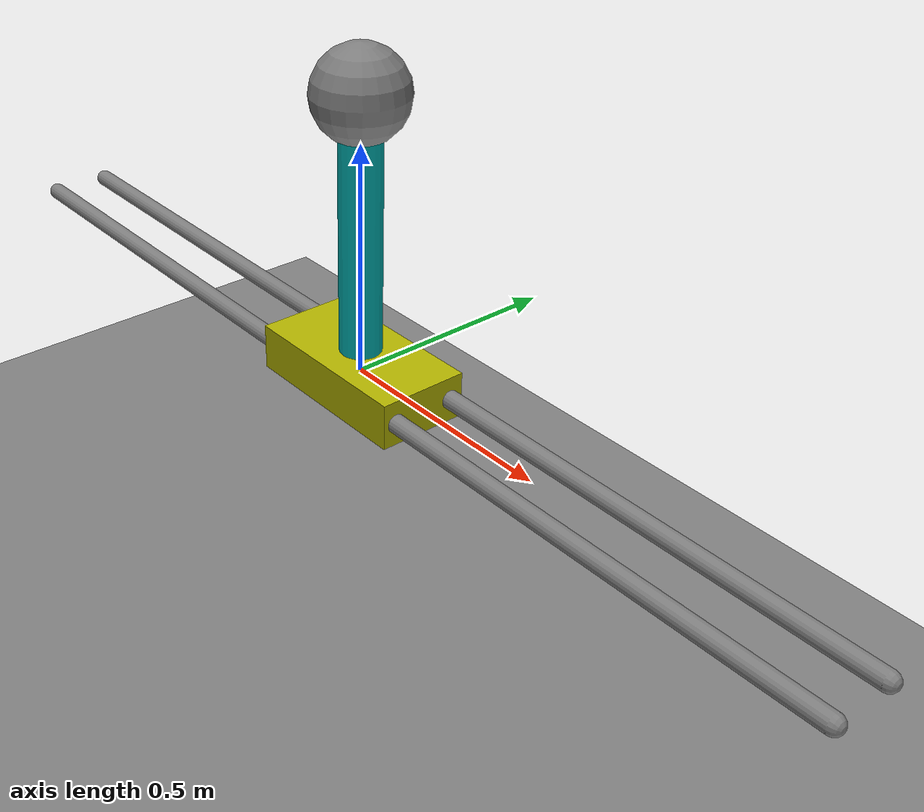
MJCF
<mujoco model='test_cartpole'>
  <compiler inertiafromgeom='true' coordinate='local'/>

  <option timestep='0.01' wind="0.0 0 0.0" density="1.2"/>

  <default>
    <joint damping='0.05' solreflimit='.08 1'/>
    <geom contype='0' friction='1 0.1 0.1'/>
  </default>

  <worldbody>
    <camera name='fixed' pos='0 -2.5 0' quat='0.707 0.707 0 0'/>
    <geom name='floor' pos='0 0 -1' size='4 4 4' type='plane' />
    <geom name='rail1' type='capsule' pos='0 .07 0' quat='0.707 0 0.707 0'
          size='0.02 1.2' />
    <geom name='rail2' type='capsule' pos='0 -.07 0' quat='0.707 0 0.707 0'
          size='0.02 1.2' />
    <body name='cart' pos='0 0 0'>
      <camera pos='0 -2.5 0' quat='0.707 0.707 0 0' />
      <joint name='slider' type='slide' limited='true' pos='0 0 0'
               axis='1 0 0' range='-1 1' />
      <geom name='cart' type='box' pos='0 0 0'
              size='0.2 0.1 0.05' rgba='0.7 0.7 0 1'
              density='1200'/>
      <site name='cart sensor' type='box' pos='0 0 0'
              size='0.2 0.1 0.05' rgba='0.7 0.7 0 0' />
      <body name='pole' pos='0 0 0'>
        <camera name='pole'  pos='0 -2.5 0' quat='0.707 0.707 0 0' />
        <joint name='hinge' type='hinge' pos='0 0 0' axis='0 1 0'/>
        <geom type='capsule' fromto='0 0 0 0 0 0.6'
                size='0.045 0.3' rgba='0 0.7 0.7 1' />
        <site type='sphere' size='.01' name='tip' pos='.001 0 .6'/>
        <body name='end_mass'>
          <geom name='end_mass' type='sphere' pos='0 0 0.6' size='0.1' density='100'/>
        </body>
      </body>
    </body>
  </worldbody>

  <actuator>
    <motor name='slide' joint='slider' gear='50' ctrllimited='true' ctrlrange='-1 1' />
  </actuator>

  <sensor>
    <accelerometer name="accelerometer" site="cart sensor"/>
    <touch name="collision" site="cart sensor"/>
  </sensor>

</mujoco>
